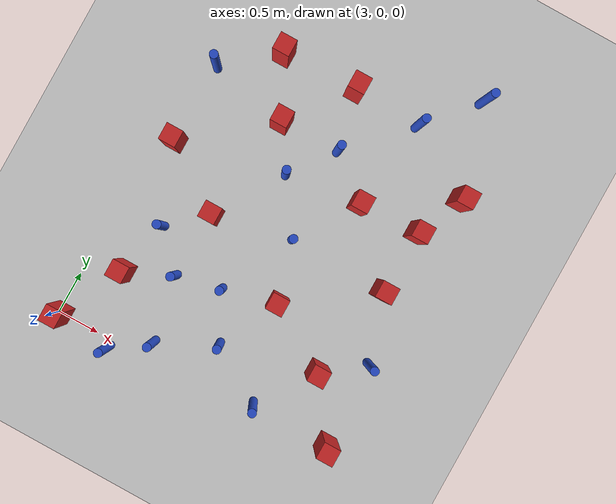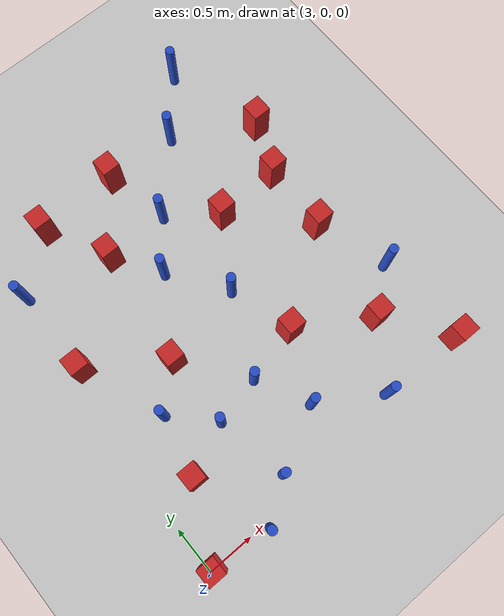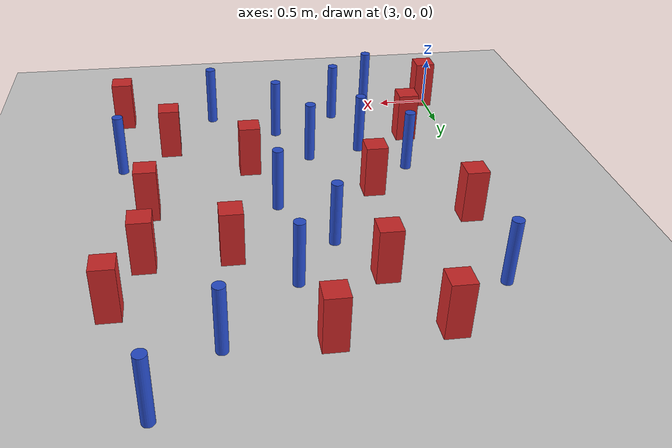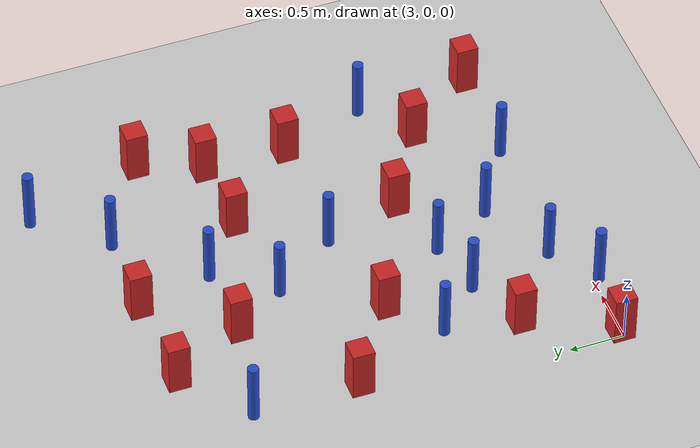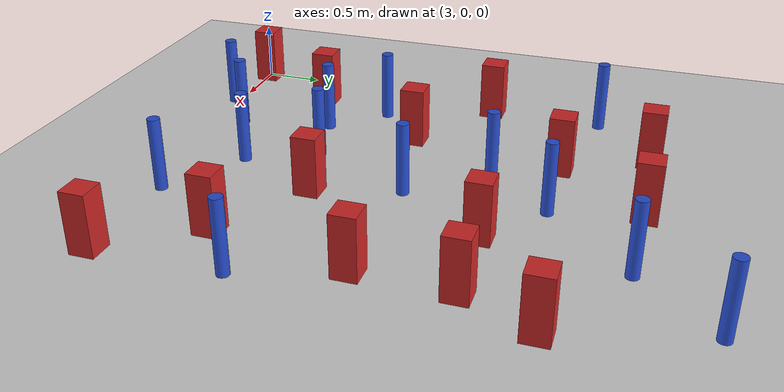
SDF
<sdf version="1.6">
 <world name="default">
  <model name="ground_plane">
   <static>1</static>
   <link name="link">
    <collision name="collision">
     <geometry><plane><normal>0 0 1</normal><size>100 100</size></plane></geometry>
     <surface><friction><ode><mu>100</mu><mu2>50</mu2></ode></friction></surface>
    </collision>
    <visual name="visual">
     <cast_shadows>0</cast_shadows>
     <geometry><plane><normal>0 0 1</normal><size>100 100</size></plane></geometry>
     <material>
      <ambient>1.0 1.0 1.0 1.0</ambient>
      <diffuse>0.8 0.8 0.8 1.0</diffuse>
      <specular>0.01 0.01 0.01 1.000000</specular>
     </material>
    </visual>
   </link>
  </model>
  <model name="square_post_obstacle10">
   <static>true</static>
   <pose>6.35777453444 3.31523075422 -4.36207812815e-07 3.75137919937e-06 9.77721102514e-07 2.47381364184e-05</pose>
   <link name="link">
    <pose>0 0 0.25 0 -0 0</pose>
    <inertial>
     <mass>100</mass>
     <inertia>
      <ixx>0.166667</ixx>
      <ixy>0</ixy>
      <ixz>0</ixz>
      <iyy>0.166667</iyy>
      <iyz>0</iyz>
      <izz>0.166667</izz>
     </inertia>
    </inertial>
    <collision name="collision"><geometry><box><size>.2 .2 .5</size></box></geometry></collision>
    <visual name="visual">
     <geometry><box><size>.2 .2 .5</size></box></geometry>
     <material>
      <script><name>Gazebo/Red</name><uri>file://media/materials/scripts/gazebo.material</uri></script>
     </material>
    </visual>
   </link>
  </model>
  <model name="square_post_obstacle19">
   <static>true</static>
   <pose>3.23109717422 2.34629957783 -4.36207812815e-07 3.75137919937e-06 9.77721102514e-07 2.47381364184e-05</pose>
   <link name="link">
    <pose>0 0 0.25 0 -0 0</pose>
    <inertial>
     <mass>100</mass>
     <inertia>
      <ixx>0.166667</ixx>
      <ixy>0</ixy>
      <ixz>0</ixz>
      <iyy>0.166667</iyy>
      <iyz>0</iyz>
      <izz>0.166667</izz>
     </inertia>
    </inertial>
    <collision name="collision"><geometry><box><size>.2 .2 .5</size></box></geometry></collision>
    <visual name="visual">
     <geometry><box><size>.2 .2 .5</size></box></geometry>
     <material>
      <script><name>Gazebo/Red</name><uri>file://media/materials/scripts/gazebo.material</uri></script>
     </material>
    </visual>
   </link>
  </model>
  <model name="square_post_obstacle31">
   <static>true</static>
   <pose>5.88534016546 0.849341082673 -4.36207812815e-07 3.75137919937e-06 9.77721102514e-07 2.47381364184e-05</pose>
   <link name="link">
    <pose>0 0 0.25 0 -0 0</pose>
    <inertial>
     <mass>100</mass>
     <inertia>
      <ixx>0.166667</ixx>
      <ixy>0</ixy>
      <ixz>0</ixz>
      <iyy>0.166667</iyy>
      <iyz>0</iyz>
      <izz>0.166667</izz>
     </inertia>
    </inertial>
    <collision name="collision"><geometry><box><size>.2 .2 .5</size></box></geometry></collision>
    <visual name="visual">
     <geometry><box><size>.2 .2 .5</size></box></geometry>
     <material>
      <script><name>Gazebo/Red</name><uri>file://media/materials/scripts/gazebo.material</uri></script>
     </material>
    </visual>
   </link>
  </model>
  <model name="pole_obstacle36">
   <static>true</static>
   <pose>6.04374949227 4.39701705484 -3.09024884793e-07 -7.19054271911e-07 -2.1131507516e-07 -1.93935509277e-07</pose>
   <link name="link">
    <pose>0 0 0.3 0 -0 0</pose>
    <inertial>
     <mass>1</mass>
     <inertia><ixx>0.145833</ixx><ixy>0</ixy><ixz>0</ixz><iyy>0.145833</iyy><iyz>0</iyz><izz>0.125</izz></inertia>
    </inertial>
    <collision name="collision">
     <geometry><cylinder><radius>0.05</radius><length>.6</length></cylinder></geometry>
    </collision>
    <visual name="visual">
     <geometry><cylinder><radius>0.05</radius><length>.6</length></cylinder></geometry>
     <material>
      <script><name>Gazebo/Blue</name><uri>file://media/materials/scripts/gazebo.material</uri></script>
     </material>
    </visual>
   </link>
  </model>
  <model name="square_post_obstacle39">
   <static>true</static>
   <pose>6.37643975947 0.168601150154 -4.36207812815e-07 3.75137919937e-06 9.77721102514e-07 2.47381364184e-05</pose>
   <link name="link">
    <pose>0 0 0.25 0 -0 0</pose>
    <inertial>
     <mass>100</mass>
     <inertia>
      <ixx>0.166667</ixx>
      <ixy>0</ixy>
      <ixz>0</ixz>
      <iyy>0.166667</iyy>
      <iyz>0</iyz>
      <izz>0.166667</izz>
     </inertia>
    </inertial>
    <collision name="collision"><geometry><box><size>.2 .2 .5</size></box></geometry></collision>
    <visual name="visual">
     <geometry><box><size>.2 .2 .5</size></box></geometry>
     <material>
      <script><name>Gazebo/Red</name><uri>file://media/materials/scripts/gazebo.material</uri></script>
     </material>
    </visual>
   </link>
  </model>
  <model name="pole_obstacle43">
   <static>true</static>
   <pose>5.53462977973 3.8077475827 -3.09024884793e-07 -7.19054271912e-07 -2.11315075144e-07 -1.93935509269e-07</pose>
   <link name="link">
    <pose>0 0 0.3 0 -0 0</pose>
    <inertial>
     <mass>1</mass>
     <inertia><ixx>0.145833</ixx><ixy>0</ixy><ixz>0</ixz><iyy>0.145833</iyy><iyz>0</iyz><izz>0.125</izz></inertia>
    </inertial>
    <collision name="collision">
     <geometry><cylinder><radius>0.05</radius><length>.6</length></cylinder></geometry>
    </collision>
    <visual name="visual">
     <geometry><cylinder><radius>0.05</radius><length>.6</length></cylinder></geometry>
     <material>
      <script><name>Gazebo/Blue</name><uri>file://media/materials/scripts/gazebo.material</uri></script>
     </material>
    </visual>
   </link>
  </model>
  <model name="pole_obstacle48">
   <static>true</static>
   <pose>4.92300519197 2.00692325377 -3.09024884793e-07 -7.19054271912e-07 -2.1131507513e-07 -1.93935509262e-07</pose>
   <link name="link">
    <pose>0 0 0.3 0 -0 0</pose>
    <inertial>
     <mass>1</mass>
     <inertia><ixx>0.145833</ixx><ixy>0</ixy><ixz>0</ixz><iyy>0.145833</iyy><iyz>0</iyz><izz>0.125</izz></inertia>
    </inertial>
    <collision name="collision">
     <geometry><cylinder><radius>0.05</radius><length>.6</length></cylinder></geometry>
    </collision>
    <visual name="visual">
     <geometry><cylinder><radius>0.05</radius><length>.6</length></cylinder></geometry>
     <material>
      <script><name>Gazebo/Blue</name><uri>file://media/materials/scripts/gazebo.material</uri></script>
     </material>
    </visual>
   </link>
  </model>
  <model name="square_post_obstacle50">
   <static>true</static>
   <pose>5.38820021094 2.7258554998 -4.36207812815e-07 3.75137919937e-06 9.77721102514e-07 2.47381364184e-05</pose>
   <link name="link">
    <pose>0 0 0.25 0 -0 0</pose>
    <inertial>
     <mass>100</mass>
     <inertia>
      <ixx>0.166667</ixx>
      <ixy>0</ixy>
      <ixz>0</ixz>
      <iyy>0.166667</iyy>
      <iyz>0</iyz>
      <izz>0.166667</izz>
     </inertia>
    </inertial>
    <collision name="collision"><geometry><box><size>.2 .2 .5</size></box></geometry></collision>
    <visual name="visual">
     <geometry><box><size>.2 .2 .5</size></box></geometry>
     <material>
      <script><name>Gazebo/Red</name><uri>file://media/materials/scripts/gazebo.material</uri></script>
     </material>
    </visual>
   </link>
  </model>
  <model name="square_post_obstacle53">
   <static>true</static>
   <pose>4.00072334522 1.82328823469 -4.36207812815e-07 3.75137919937e-06 9.77721102514e-07 2.47381364184e-05</pose>
   <link name="link">
    <pose>0 0 0.25 0 -0 0</pose>
    <inertial>
     <mass>100</mass>
     <inertia>
      <ixx>0.166667</ixx>
      <ixy>0</ixy>
      <ixz>0</ixz>
      <iyy>0.166667</iyy>
      <iyz>0</iyz>
      <izz>0.166667</izz>
     </inertia>
    </inertial>
    <collision name="collision"><geometry><box><size>.2 .2 .5</size></box></geometry></collision>
    <visual name="visual">
     <geometry><box><size>.2 .2 .5</size></box></geometry>
     <material>
      <script><name>Gazebo/Red</name><uri>file://media/materials/scripts/gazebo.material</uri></script>
     </material>
    </visual>
   </link>
  </model>
  <model name="square_post_obstacle59">
   <static>true</static>
   <pose>3.43612875165 0.786175362388 -4.36207812815e-07 3.75137919937e-06 9.77721102514e-07 2.47381364184e-05</pose>
   <link name="link">
    <pose>0 0 0.25 0 -0 0</pose>
    <inertial>
     <mass>100</mass>
     <inertia>
      <ixx>0.166667</ixx>
      <ixy>0</ixy>
      <ixz>0</ixz>
      <iyy>0.166667</iyy>
      <iyz>0</iyz>
      <izz>0.166667</izz>
     </inertia>
    </inertial>
    <collision name="collision"><geometry><box><size>.2 .2 .5</size></box></geometry></collision>
    <visual name="visual">
     <geometry><box><size>.2 .2 .5</size></box></geometry>
     <material>
      <script><name>Gazebo/Red</name><uri>file://media/materials/scripts/gazebo.material</uri></script>
     </material>
    </visual>
   </link>
  </model>
  <model name="pole_obstacle59">
   <static>true</static>
   <pose>4.78064047559 0.588167447889 -3.09024884793e-07 -7.19054271912e-07 -2.11315075134e-07 -1.93935509265e-07</pose>
   <link name="link">
    <pose>0 0 0.3 0 -0 0</pose>
    <inertial>
     <mass>1</mass>
     <inertia><ixx>0.145833</ixx><ixy>0</ixy><ixz>0</ixz><iyy>0.145833</iyy><iyz>0</iyz><izz>0.125</izz></inertia>
    </inertial>
    <collision name="collision">
     <geometry><cylinder><radius>0.05</radius><length>.6</length></cylinder></geometry>
    </collision>
    <visual name="visual">
     <geometry><cylinder><radius>0.05</radius><length>.6</length></cylinder></geometry>
     <material>
      <script><name>Gazebo/Blue</name><uri>file://media/materials/scripts/gazebo.material</uri></script>
     </material>
    </visual>
   </link>
  </model>
  <model name="square_post_obstacle62">
   <static>true</static>
   <pose>3.04533311304 0.017092746261 -4.36207812815e-07 3.75137919937e-06 9.77721102514e-07 2.47381364184e-05</pose>
   <link name="link">
    <pose>0 0 0.25 0 -0 0</pose>
    <inertial>
     <mass>100</mass>
     <inertia>
      <ixx>0.166667</ixx>
      <ixy>0</ixy>
      <ixz>0</ixz>
      <iyy>0.166667</iyy>
      <iyz>0</iyz>
      <izz>0.166667</izz>
     </inertia>
    </inertial>
    <collision name="collision"><geometry><box><size>.2 .2 .5</size></box></geometry></collision>
    <visual name="visual">
     <geometry><box><size>.2 .2 .5</size></box></geometry>
     <material>
      <script><name>Gazebo/Red</name><uri>file://media/materials/scripts/gazebo.material</uri></script>
     </material>
    </visual>
   </link>
  </model>
  <model name="pole_obstacle78">
   <static>true</static>
   <pose>4.50170225332 1.14489434599 -3.09024884793e-07 -7.19054271912e-07 -2.11315075124e-07 -1.93935509261e-07</pose>
   <link name="link">
    <pose>0 0 0.3 0 -0 0</pose>
    <inertial>
     <mass>1</mass>
     <inertia><ixx>0.145833</ixx><ixy>0</ixy><ixz>0</ixz><iyy>0.145833</iyy><iyz>0</iyz><izz>0.125</izz></inertia>
    </inertial>
    <collision name="collision">
     <geometry><cylinder><radius>0.05</radius><length>.6</length></cylinder></geometry>
    </collision>
    <visual name="visual">
     <geometry><cylinder><radius>0.05</radius><length>.6</length></cylinder></geometry>
     <material>
      <script><name>Gazebo/Blue</name><uri>file://media/materials/scripts/gazebo.material</uri></script>
     </material>
    </visual>
   </link>
  </model>
  <model name="square_post_obstacle79">
   <static>true</static>
   <pose>6.08925654477 1.99488444168 -4.36207812815e-07 3.75137919937e-06 9.77721102514e-07 2.47381364184e-05</pose>
   <link name="link">
    <pose>0 0 0.25 0 -0 0</pose>
    <inertial>
     <mass>100</mass>
     <inertia>
      <ixx>0.166667</ixx>
      <ixy>0</ixy>
      <ixz>0</ixz>
      <iyy>0.166667</iyy>
      <iyz>0</iyz>
      <izz>0.166667</izz>
     </inertia>
    </inertial>
    <collision name="collision"><geometry><box><size>.2 .2 .5</size></box></geometry></collision>
    <visual name="visual">
     <geometry><box><size>.2 .2 .5</size></box></geometry>
     <material>
      <script><name>Gazebo/Red</name><uri>file://media/materials/scripts/gazebo.material</uri></script>
     </material>
    </visual>
   </link>
  </model>
  <model name="pole_obstacle116">
   <static>true</static>
   <pose>6.35552639708 1.19837929352 -3.09024884793e-07 -7.19054271912e-07 -2.11315075124e-07 -1.93935509261e-07</pose>
   <link name="link">
    <pose>0 0 0.3 0 -0 0</pose>
    <inertial>
     <mass>1</mass>
     <inertia><ixx>0.145833</ixx><ixy>0</ixy><ixz>0</ixz><iyy>0.145833</iyy><iyz>0</iyz><izz>0.125</izz></inertia>
    </inertial>
    <collision name="collision">
     <geometry><cylinder><radius>0.05</radius><length>.6</length></cylinder></geometry>
    </collision>
    <visual name="visual">
     <geometry><cylinder><radius>0.05</radius><length>.6</length></cylinder></geometry>
     <material>
      <script><name>Gazebo/Blue</name><uri>file://media/materials/scripts/gazebo.material</uri></script>
     </material>
    </visual>
   </link>
  </model>
  <model name="pole_obstacle135">
   <static>true</static>
   <pose>4.12170223683 0.249247125609 -3.09024884793e-07 -7.19054271912e-07 -2.11315075124e-07 -1.93935509261e-07</pose>
   <link name="link">
    <pose>0 0 0.3 0 -0 0</pose>
    <inertial>
     <mass>1</mass>
     <inertia><ixx>0.145833</ixx><ixy>0</ixy><ixz>0</ixz><iyy>0.145833</iyy><iyz>0</iyz><izz>0.125</izz></inertia>
    </inertial>
    <collision name="collision">
     <geometry><cylinder><radius>0.05</radius><length>.6</length></cylinder></geometry>
    </collision>
    <visual name="visual">
     <geometry><cylinder><radius>0.05</radius><length>.6</length></cylinder></geometry>
     <material>
      <script><name>Gazebo/Blue</name><uri>file://media/materials/scripts/gazebo.material</uri></script>
     </material>
    </visual>
   </link>
  </model>
  <model name="square_post_obstacle122">
   <static>true</static>
   <pose>6.11204006504 2.7562212502 -4.36207812815e-07 3.75137919937e-06 9.77721102514e-07 2.47381364184e-05</pose>
   <link name="link">
    <pose>0 0 0.25 0 -0 0</pose>
    <inertial>
     <mass>100</mass>
     <inertia>
      <ixx>0.166667</ixx>
      <ixy>0</ixy>
      <ixz>0</ixz>
      <iyy>0.166667</iyy>
      <iyz>0</iyz>
      <izz>0.166667</izz>
     </inertia>
    </inertial>
    <collision name="collision"><geometry><box><size>.2 .2 .5</size></box></geometry></collision>
    <visual name="visual">
     <geometry><box><size>.2 .2 .5</size></box></geometry>
     <material>
      <script><name>Gazebo/Red</name><uri>file://media/materials/scripts/gazebo.material</uri></script>
     </material>
    </visual>
   </link>
  </model>
  <model name="pole_obstacle140">
   <static>true</static>
   <pose>3.97463081743 1.0243708159 -3.09024884848e-07 -7.19054271902e-07 -2.11315075194e-07 -1.93935509285e-07</pose>
   <link name="link">
    <pose>0 0 0.3 0 -0 0</pose>
    <inertial>
     <mass>1</mass>
     <inertia><ixx>0.145833</ixx><ixy>0</ixy><ixz>0</ixz><iyy>0.145833</iyy><iyz>0</iyz><izz>0.125</izz></inertia>
    </inertial>
    <collision name="collision">
     <geometry><cylinder><radius>0.05</radius><length>.6</length></cylinder></geometry>
    </collision>
    <visual name="visual">
     <geometry><cylinder><radius>0.05</radius><length>.6</length></cylinder></geometry>
     <material>
      <script><name>Gazebo/Blue</name><uri>file://media/materials/scripts/gazebo.material</uri></script>
     </material>
    </visual>
   </link>
  </model>
  <model name="square_post_obstacle144">
   <static>true</static>
   <pose>4.1787152346 3.1085623917 -4.36207812815e-07 3.75137919937e-06 9.77721102514e-07 2.47381364184e-05</pose>
   <link name="link">
    <pose>0 0 0.25 0 -0 0</pose>
    <inertial>
     <mass>100</mass>
     <inertia>
      <ixx>0.166667</ixx>
      <ixy>0</ixy>
      <ixz>0</ixz>
      <iyy>0.166667</iyy>
      <iyz>0</iyz>
      <izz>0.166667</izz>
     </inertia>
    </inertial>
    <collision name="collision"><geometry><box><size>.2 .2 .5</size></box></geometry></collision>
    <visual name="visual">
     <geometry><box><size>.2 .2 .5</size></box></geometry>
     <material>
      <script><name>Gazebo/Red</name><uri>file://media/materials/scripts/gazebo.material</uri></script>
     </material>
    </visual>
   </link>
  </model>
  <model name="pole_obstacle156">
   <static>true</static>
   <pose>4.88693382808 3.12632480685 -3.09024884793e-07 -7.19054271912e-07 -2.11315075144e-07 -1.93935509269e-07</pose>
   <link name="link">
    <pose>0 0 0.3 0 -0 0</pose>
    <inertial>
     <mass>1</mass>
     <inertia><ixx>0.145833</ixx><ixy>0</ixy><ixz>0</ixz><iyy>0.145833</iyy><iyz>0</iyz><izz>0.125</izz></inertia>
    </inertial>
    <collision name="collision">
     <geometry><cylinder><radius>0.05</radius><length>.6</length></cylinder></geometry>
    </collision>
    <visual name="visual">
     <geometry><cylinder><radius>0.05</radius><length>.6</length></cylinder></geometry>
     <material>
      <script><name>Gazebo/Blue</name><uri>file://media/materials/scripts/gazebo.material</uri></script>
     </material>
    </visual>
   </link>
  </model>
  <model name="square_post_obstacle162">
   <static>true</static>
   <pose>3.82959526486 3.79223630442 -4.36207812815e-07 3.75137919937e-06 9.77721102514e-07 2.47381364184e-05</pose>
   <link name="link">
    <pose>0 0 0.25 0 -0 0</pose>
    <inertial>
     <mass>100</mass>
     <inertia>
      <ixx>0.166667</ixx>
      <ixy>0</ixy>
      <ixz>0</ixz>
      <iyy>0.166667</iyy>
      <iyz>0</iyz>
      <izz>0.166667</izz>
     </inertia>
    </inertial>
    <collision name="collision"><geometry><box><size>.2 .2 .5</size></box></geometry></collision>
    <visual name="visual">
     <geometry><box><size>.2 .2 .5</size></box></geometry>
     <material>
      <script><name>Gazebo/Red</name><uri>file://media/materials/scripts/gazebo.material</uri></script>
     </material>
    </visual>
   </link>
  </model>
  <model name="pole_obstacle173">
   <static>true</static>
   <pose>3.69852856373 -0.0536795828852 -3.09024884793e-07 -7.19054271912e-07 -2.11315075117e-07 -1.93935509258e-07</pose>
   <link name="link">
    <pose>0 0 0.3 0 -0 0</pose>
    <inertial>
     <mass>1</mass>
     <inertia><ixx>0.145833</ixx><ixy>0</ixy><ixz>0</ixz><iyy>0.145833</iyy><iyz>0</iyz><izz>0.125</izz></inertia>
    </inertial>
    <collision name="collision">
     <geometry><cylinder><radius>0.05</radius><length>.6</length></cylinder></geometry>
    </collision>
    <visual name="visual">
     <geometry><cylinder><radius>0.05</radius><length>.6</length></cylinder></geometry>
     <material>
      <script><name>Gazebo/Blue</name><uri>file://media/materials/scripts/gazebo.material</uri></script>
     </material>
    </visual>
   </link>
  </model>
  <model name="pole_obstacle175">
   <static>true</static>
   <pose>5.43417389257 0.181284381065 -3.09024884793e-07 -7.19054271912e-07 -2.11315075122e-07 -1.9393550926e-07</pose>
   <link name="link">
    <pose>0 0 0.3 0 -0 0</pose>
    <inertial>
     <mass>1</mass>
     <inertia><ixx>0.145833</ixx><ixy>0</ixy><ixz>0</ixz><iyy>0.145833</iyy><iyz>0</iyz><izz>0.125</izz></inertia>
    </inertial>
    <collision name="collision">
     <geometry><cylinder><radius>0.05</radius><length>.6</length></cylinder></geometry>
    </collision>
    <visual name="visual">
     <geometry><cylinder><radius>0.05</radius><length>.6</length></cylinder></geometry>
     <material>
      <script><name>Gazebo/Blue</name><uri>file://media/materials/scripts/gazebo.material</uri></script>
     </material>
    </visual>
   </link>
  </model>
  <model name="pole_obstacle186">
   <static>true</static>
   <pose>3.23499505537 3.3063418956 -3.09024884793e-07 -7.19054271912e-07 -2.11315075144e-07 -1.93935509271e-07</pose>
   <link name="link">
    <pose>0 0 0.3 0 -0 0</pose>
    <inertial>
     <mass>1</mass>
     <inertia><ixx>0.145833</ixx><ixy>0</ixy><ixz>0</ixz><iyy>0.145833</iyy><iyz>0</iyz><izz>0.125</izz></inertia>
    </inertial>
    <collision name="collision">
     <geometry><cylinder><radius>0.05</radius><length>.6</length></cylinder></geometry>
    </collision>
    <visual name="visual">
     <geometry><cylinder><radius>0.05</radius><length>.6</length></cylinder></geometry>
     <material>
      <script><name>Gazebo/Blue</name><uri>file://media/materials/scripts/gazebo.material</uri></script>
     </material>
    </visual>
   </link>
  </model>
  <model name="pole_obstacle194">
   <static>true</static>
   <pose>4.50346043025 2.61179166293 -3.09024884793e-07 -7.19054271912e-07 -2.11315075144e-07 -1.93935509269e-07</pose>
   <link name="link">
    <pose>0 0 0.3 0 -0 0</pose>
    <inertial>
     <mass>1</mass>
     <inertia><ixx>0.145833</ixx><ixy>0</ixy><ixz>0</ixz><iyy>0.145833</iyy><iyz>0</iyz><izz>0.125</izz></inertia>
    </inertial>
    <collision name="collision">
     <geometry><cylinder><radius>0.05</radius><length>.6</length></cylinder></geometry>
    </collision>
    <visual name="visual">
     <geometry><cylinder><radius>0.05</radius><length>.6</length></cylinder></geometry>
     <material>
      <script><name>Gazebo/Blue</name><uri>file://media/materials/scripts/gazebo.material</uri></script>
     </material>
    </visual>
   </link>
  </model>
  <model name="square_post_obstacle196">
   <static>true</static>
   <pose>4.73433207948 3.82688407418 -4.36207812815e-07 3.75137919937e-06 9.77721102514e-07 2.47381364184e-05</pose>
   <link name="link">
    <pose>0 0 0.25 0 -0 0</pose>
    <inertial>
     <mass>100</mass>
     <inertia>
      <ixx>0.166667</ixx>
      <ixy>0</ixy>
      <ixz>0</ixz>
      <iyy>0.166667</iyy>
      <iyz>0</iyz>
      <izz>0.166667</izz>
     </inertia>
    </inertial>
    <collision name="collision"><geometry><box><size>.2 .2 .5</size></box></geometry></collision>
    <visual name="visual">
     <geometry><box><size>.2 .2 .5</size></box></geometry>
     <material>
      <script><name>Gazebo/Red</name><uri>file://media/materials/scripts/gazebo.material</uri></script>
     </material>
    </visual>
   </link>
  </model>
  <model name="pole_obstacle222">
   <static>true</static>
   <pose>3.57947972967 1.43837387327 -3.09024884793e-07 -7.19054271912e-07 -2.11315075122e-07 -1.93935509259e-07</pose>
   <link name="link">
    <pose>0 0 0.3 0 -0 0</pose>
    <inertial>
     <mass>1</mass>
     <inertia><ixx>0.145833</ixx><ixy>0</ixy><ixz>0</ixz><iyy>0.145833</iyy><iyz>0</iyz><izz>0.125</izz></inertia>
    </inertial>
    <collision name="collision">
     <geometry><cylinder><radius>0.05</radius><length>.6</length></cylinder></geometry>
    </collision>
    <visual name="visual">
     <geometry><cylinder><radius>0.05</radius><length>.6</length></cylinder></geometry>
     <material>
      <script><name>Gazebo/Blue</name><uri>file://media/materials/scripts/gazebo.material</uri></script>
     </material>
    </visual>
   </link>
  </model>
  <model name="square_post_obstacle207">
   <static>true</static>
   <pose>5.11954498328 1.30905886024 -4.36207812815e-07 3.75137919937e-06 9.77721102514e-07 2.47381364184e-05</pose>
   <link name="link">
    <pose>0 0 0.25 0 -0 0</pose>
    <inertial>
     <mass>100</mass>
     <inertia>
      <ixx>0.166667</ixx>
      <ixy>0</ixy>
      <ixz>0</ixz>
      <iyy>0.166667</iyy>
      <iyz>0</iyz>
      <izz>0.166667</izz>
     </inertia>
    </inertial>
    <collision name="collision"><geometry><box><size>.2 .2 .5</size></box></geometry></collision>
    <visual name="visual">
     <geometry><box><size>.2 .2 .5</size></box></geometry>
     <material>
      <script><name>Gazebo/Red</name><uri>file://media/materials/scripts/gazebo.material</uri></script>
     </material>
    </visual>
   </link>
  </model>
 </world>
</sdf>
